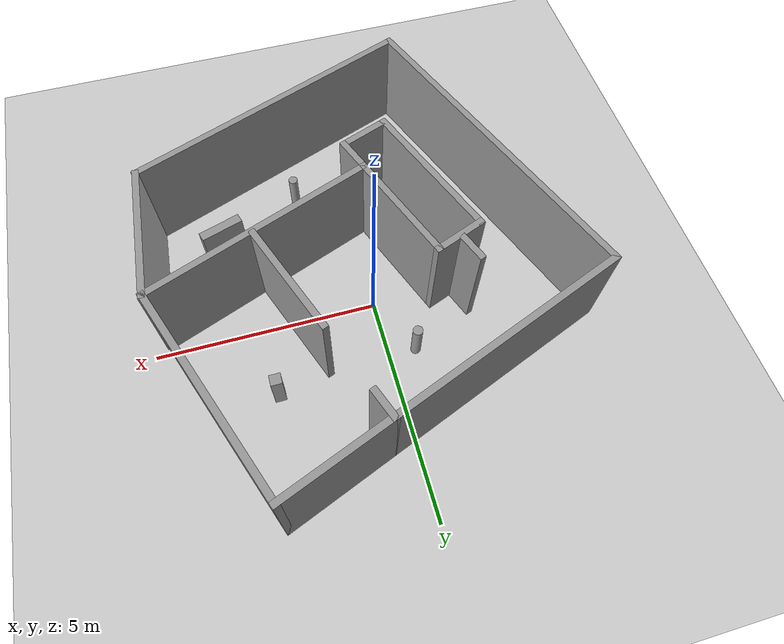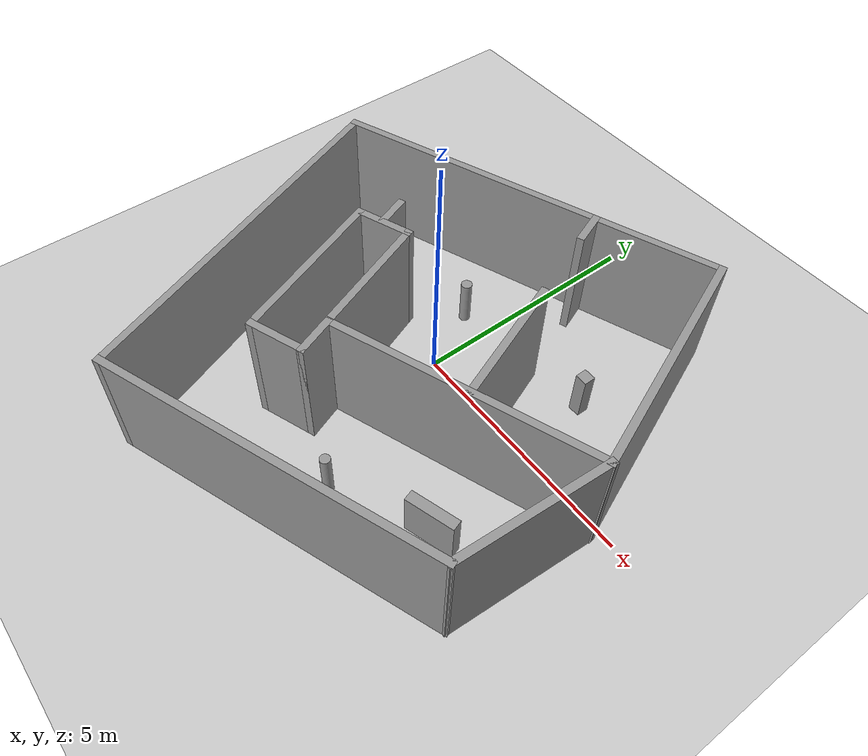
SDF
<sdf version="1.6">
 <world name="default">
  <light name="sun" type="directional">
   <pose>0 0 10 0 -0 0</pose>
   <diffuse>0.8 0.8 0.8 1</diffuse>
   <specular>0.2 0.2 0.2 1</specular>
   <attenuation>
    <range>1000</range>
    <constant>0.9</constant>
    <linear>0.01</linear>
    <quadratic>0.001</quadratic>
   </attenuation>
   <direction>-0.5 0.1 -0.9</direction>
  </light>
  <model name="ground_plane">
   <static>1</static>
   <link name="link">
    <collision name="collision">
     <geometry><plane><normal>0 0 1</normal><size>100 100</size></plane></geometry>
     <surface>
      <contact><collide_bitmask>65535</collide_bitmask></contact>
      <friction><ode><mu>100</mu><mu2>50</mu2></ode></friction>
     </surface>
    </collision>
    <visual name="visual">
     <cast_shadows>0</cast_shadows>
     <geometry><plane><normal>0 0 1</normal><size>100 100</size></plane></geometry>
     <material>
      <script><uri>file://media/materials/scripts/gazebo.material</uri><name>Gazebo/Grey</name></script>
     </material>
    </visual>
   </link>
  </model>
  <gravity>0 0 -9.8</gravity>
  <magnetic_field>6e-06 2.3e-05 -4.2e-05</magnetic_field>
  <atmosphere type="adiabatic"/>
  <physics name="default_physics" default="0" type="ode">
   <max_step_size>0.001</max_step_size>
   <real_time_factor>1</real_time_factor>
   <real_time_update_rate>1000</real_time_update_rate>
  </physics>
  <scene><ambient>0.4 0.4 0.4 1</ambient><background>0.7 0.7 0.7 1</background><shadows>1</shadows></scene>
  <spherical_coordinates>
   <surface_model>EARTH_WGS84</surface_model>
   <latitude_deg>0</latitude_deg>
   <longitude_deg>0</longitude_deg>
   <elevation>0</elevation>
   <heading_deg>0</heading_deg>
  </spherical_coordinates>
  <model name="simple_world">
   <pose>0.496822 -0.689835 0 0 -0 0.363551</pose>
   <link name="Wall_0">
    <collision name="Wall_0_Collision">
     <geometry><box><size>8.25 0.15 2.5</size></box></geometry>
     <pose>0 0 1.25 0 -0 0</pose>
    </collision>
    <visual name="Wall_0_Visual">
     <pose>0 0 1.25 0 -0 0</pose>
     <geometry><box><size>8.25 0.15 2.5</size></box></geometry>
     <material>
      <script><uri>file://media/materials/scripts/gazebo.material</uri><name>Gazebo/Grey</name></script>
      <ambient>1 1 1 1</ambient>
     </material>
     <meta><layer>0</layer></meta>
    </visual>
    <pose>-0.012156 3.81216 0 0 -0 0</pose>
   </link>
   <link name="Wall_1">
    <collision name="Wall_1_Collision">
     <geometry><box><size>5 0.15 2.5</size></box></geometry>
     <pose>0 0 1.25 0 -0 0</pose>
    </collision>
    <visual name="Wall_1_Visual">
     <pose>0 0 1.25 0 -0 0</pose>
     <geometry><box><size>5 0.15 2.5</size></box></geometry>
     <material>
      <script><uri>file://media/materials/scripts/gazebo.material</uri><name>Gazebo/Grey</name></script>
      <ambient>1 1 1 1</ambient>
     </material>
     <meta><layer>0</layer></meta>
    </visual>
    <pose>4.03784 1.38716 0 0 0 -1.5708</pose>
   </link>
   <link name="Wall_10">
    <collision name="Wall_10_Collision">
     <geometry><box><size>7 0.15 2.5</size></box></geometry>
     <pose>0 0 1.25 0 -0 0</pose>
    </collision>
    <visual name="Wall_10_Visual">
     <pose>0 0 1.25 0 -0 0</pose>
     <geometry><box><size>7 0.15 2.5</size></box></geometry>
     <material>
      <script><uri>file://media/materials/scripts/gazebo.material</uri><name>Gazebo/Grey</name></script>
      <ambient>1 1 1 1</ambient>
     </material>
     <meta><layer>0</layer></meta>
    </visual>
    <pose>-0.637156 -3.78784 0 0 -0 0</pose>
   </link>
   <link name="Wall_11">
    <collision name="Wall_11_Collision">
     <geometry><box><size>3.17076 0.15 2.5</size></box></geometry>
     <pose>0 0 1.25 0 -0 0</pose>
    </collision>
    <visual name="Wall_11_Visual">
     <pose>0 0 1.25 0 -0 0</pose>
     <geometry><box><size>3.17076 0.15 2.5</size></box></geometry>
     <material>
      <script><uri>file://media/materials/scripts/gazebo.material</uri><name>Gazebo/Grey</name></script>
      <ambient>1 1 1 1</ambient>
     </material>
     <meta><layer>0</layer></meta>
    </visual>
    <pose>3.41284 -2.41284 0 0 -0 1.14417</pose>
   </link>
   <link name="Wall_13">
    <collision name="Wall_13_Collision">
     <geometry><box><size>2.75 0.15 2.5</size></box></geometry>
     <pose>0 0 1.25 0 -0 0</pose>
    </collision>
    <visual name="Wall_13_Visual">
     <pose>0 0 1.25 0 -0 0</pose>
     <geometry><box><size>2.75 0.15 2.5</size></box></geometry>
     <material>
      <script><uri>file://media/materials/scripts/gazebo.material</uri><name>Gazebo/Grey</name></script>
      <ambient>1 1 1 1</ambient>
     </material>
     <meta><layer>0</layer></meta>
    </visual>
    <pose>1.53466 0.290982 0 0 -0 1.5708</pose>
   </link>
   <link name="Wall_15">
    <collision name="Wall_15_Collision">
     <geometry><box><size>0.75 0.15 2.5</size></box></geometry>
     <pose>0 0 1.25 0 -0 0</pose>
    </collision>
    <visual name="Wall_15_Visual">
     <pose>0 0 1.25 0 -0 0</pose>
     <geometry><box><size>0.75 0.15 2.5</size></box></geometry>
     <material>
      <script><uri>file://media/materials/scripts/gazebo.material</uri><name>Gazebo/Grey</name></script>
      <ambient>1 1 1 1</ambient>
     </material>
     <meta><layer>0</layer></meta>
    </visual>
    <pose>1.51946 3.51216 0 0 0 -1.5708</pose>
   </link>
   <link name="Wall_17">
    <collision name="Wall_17_Collision">
     <geometry><box><size>0.75 0.15 2.5</size></box></geometry>
     <pose>0 0 1.25 0 -0 0</pose>
    </collision>
    <visual name="Wall_17_Visual">
     <pose>0 0 1.25 0 -0 0</pose>
     <geometry><box><size>0.75 0.15 2.5</size></box></geometry>
     <material>
      <script><uri>file://media/materials/scripts/gazebo.material</uri><name>Gazebo/Grey</name></script>
      <ambient>1 1 1 1</ambient>
     </material>
     <meta><layer>0</layer></meta>
    </visual>
    <pose>-1.88731 1.89168 0 0 -0 1.5708</pose>
   </link>
   <link name="Wall_2">
    <collision name="Wall_2_Collision">
     <geometry><box><size>5.5 0.15 2.5</size></box></geometry>
     <pose>0 0 1.25 0 -0 0</pose>
    </collision>
    <visual name="Wall_2_Visual">
     <pose>0 0 1.25 0 -0 0</pose>
     <geometry><box><size>5.5 0.15 2.5</size></box></geometry>
     <material>
      <script><uri>file://media/materials/scripts/gazebo.material</uri><name>Gazebo/Grey</name></script>
      <ambient>1 1 1 1</ambient>
     </material>
     <meta><layer>0</layer></meta>
    </visual>
    <pose>1.36284 -1.03784 0 0 -0 3.14159</pose>
   </link>
   <link name="Wall_3">
    <collision name="Wall_3_Collision">
     <geometry><box><size>2.75 0.15 2.5</size></box></geometry>
     <pose>0 0 1.25 0 -0 0</pose>
    </collision>
    <visual name="Wall_3_Visual">
     <pose>0 0 1.25 0 -0 0</pose>
     <geometry><box><size>2.75 0.15 2.5</size></box></geometry>
     <material>
      <script><uri>file://media/materials/scripts/gazebo.material</uri><name>Gazebo/Grey</name></script>
      <ambient>1 1 1 1</ambient>
     </material>
     <meta><layer>0</layer></meta>
    </visual>
    <pose>-1.31216 0.262156 0 0 -0 1.5708</pose>
   </link>
   <link name="Wall_4">
    <collision name="Wall_4_Collision">
     <geometry><box><size>1.25 0.15 2.5</size></box></geometry>
     <pose>0 0 1.25 0 -0 0</pose>
    </collision>
    <visual name="Wall_4_Visual">
     <pose>0 0 1.25 0 -0 0</pose>
     <geometry><box><size>1.25 0.15 2.5</size></box></geometry>
     <material>
      <script><uri>file://media/materials/scripts/gazebo.material</uri><name>Gazebo/Grey</name></script>
      <ambient>1 1 1 1</ambient>
     </material>
     <meta><layer>0</layer></meta>
    </visual>
    <pose>-1.86216 1.56216 0 0 -0 3.14159</pose>
   </link>
   <link name="Wall_5">
    <collision name="Wall_5_Collision">
     <geometry><box><size>3.5 0.15 2.5</size></box></geometry>
     <pose>0 0 1.25 0 -0 0</pose>
    </collision>
    <visual name="Wall_5_Visual">
     <pose>0 0 1.25 0 -0 0</pose>
     <geometry><box><size>3.5 0.15 2.5</size></box></geometry>
     <material>
      <script><uri>file://media/materials/scripts/gazebo.material</uri><name>Gazebo/Grey</name></script>
      <ambient>1 1 1 1</ambient>
     </material>
     <meta><layer>0</layer></meta>
    </visual>
    <pose>-2.41216 -0.112844 0 0 0 -1.5708</pose>
   </link>
   <link name="Wall_6">
    <collision name="Wall_6_Collision">
     <geometry><box><size>1.25 0.15 2.5</size></box></geometry>
     <pose>0 0 1.25 0 -0 0</pose>
    </collision>
    <visual name="Wall_6_Visual">
     <pose>0 0 1.25 0 -0 0</pose>
     <geometry><box><size>1.25 0.15 2.5</size></box></geometry>
     <material>
      <script><uri>file://media/materials/scripts/gazebo.material</uri><name>Gazebo/Grey</name></script>
      <ambient>1 1 1 1</ambient>
     </material>
     <meta><layer>0</layer></meta>
    </visual>
    <pose>-1.86216 -1.78784 0 0 -0 0</pose>
   </link>
   <link name="Wall_7">
    <collision name="Wall_7_Collision">
     <geometry><box><size>0.9 0.15 2.5</size></box></geometry>
     <pose>0 0 1.25 0 -0 0</pose>
    </collision>
    <visual name="Wall_7_Visual">
     <pose>0 0 1.25 0 -0 0</pose>
     <geometry><box><size>0.9 0.15 2.5</size></box></geometry>
     <material>
      <script><uri>file://media/materials/scripts/gazebo.material</uri><name>Gazebo/Grey</name></script>
      <ambient>1 1 1 1</ambient>
     </material>
     <meta><layer>0</layer></meta>
    </visual>
    <pose>-1.31216 -1.41284 0 0 -0 1.5708</pose>
   </link>
   <link name="Wall_9">
    <collision name="Wall_9_Collision">
     <geometry><box><size>7.75 0.15 2.5</size></box></geometry>
     <pose>0 0 1.25 0 -0 0</pose>
    </collision>
    <visual name="Wall_9_Visual">
     <pose>0 0 1.25 0 -0 0</pose>
     <geometry><box><size>7.75 0.15 2.5</size></box></geometry>
     <material>
      <script><uri>file://media/materials/scripts/gazebo.material</uri><name>Gazebo/Grey</name></script>
      <ambient>1 1 1 1</ambient>
     </material>
     <meta><layer>0</layer></meta>
    </visual>
    <pose>-4.06216 0.012156 0 0 0 -1.5708</pose>
   </link>
   <static>1</static>
  </model>
  <model name="unit_box">
   <pose>2.51882 1.56607 0.5 -3e-06 -1e-06 -9e-06</pose>
   <link name="link">
    <inertial>
     <mass>1</mass>
     <inertia>
      <ixx>0.166667</ixx>
      <ixy>0</ixy>
      <ixz>0</ixz>
      <iyy>0.166667</iyy>
      <iyz>0</iyz>
      <izz>0.166667</izz>
     </inertia>
    </inertial>
    <collision name="collision"><geometry><box><size>0.247712 0.239196 1</size></box></geometry></collision>
    <visual name="visual">
     <geometry><box><size>0.247712 0.239196 1</size></box></geometry>
     <material>
      <script><name>Gazebo/Grey</name><uri>file://media/materials/scripts/gazebo.material</uri></script>
     </material>
    </visual>
   </link>
  </model>
  <model name="unit_cylinder">
   <pose>-0.621357 1.29087 0.499999 0 0 -1.1e-05</pose>
   <link name="link">
    <inertial>
     <mass>1</mass>
     <inertia><ixx>0.145833</ixx><ixy>0</ixy><ixz>0</ixz><iyy>0.145833</iyy><iyz>0</iyz><izz>0.125</izz></inertia>
    </inertial>
    <collision name="collision">
     <geometry><cylinder><radius>0.110936</radius><length>1</length></cylinder></geometry>
    </collision>
    <visual name="visual">
     <geometry><cylinder><radius>0.110936</radius><length>1</length></cylinder></geometry>
     <material>
      <script><name>Gazebo/Grey</name><uri>file://media/materials/scripts/gazebo.material</uri></script>
     </material>
    </visual>
   </link>
  </model>
  <model name="unit_box_0">
   <pose>3.00234 -2.40313 0.5 0 -0 0.309867</pose>
   <link name="link">
    <inertial>
     <mass>1</mass>
     <inertia>
      <ixx>0.166667</ixx>
      <ixy>0</ixy>
      <ixz>0</ixz>
      <iyy>0.166667</iyy>
      <iyz>0</iyz>
      <izz>0.166667</izz>
     </inertia>
    </inertial>
    <collision name="collision"><geometry><box><size>1 0.218371 1</size></box></geometry></collision>
    <visual name="visual">
     <geometry><box><size>1 0.218371 1</size></box></geometry>
     <material>
      <script><name>Gazebo/Grey</name><uri>file://media/materials/scripts/gazebo.material</uri></script>
     </material>
    </visual>
   </link>
  </model>
  <model name="unit_cylinder_0">
   <pose>1.10413 -3.28351 0.499997 0 0 -2e-06</pose>
   <link name="link">
    <inertial>
     <mass>1</mass>
     <inertia><ixx>0.145833</ixx><ixy>0</ixy><ixz>0</ixz><iyy>0.145833</iyy><iyz>0</iyz><izz>0.125</izz></inertia>
    </inertial>
    <collision name="collision">
     <geometry><cylinder><radius>0.103837</radius><length>1</length></cylinder></geometry>
    </collision>
    <visual name="visual">
     <geometry><cylinder><radius>0.103837</radius><length>1</length></cylinder></geometry>
     <material>
      <script><name>Gazebo/Grey</name><uri>file://media/materials/scripts/gazebo.material</uri></script>
     </material>
    </visual>
   </link>
  </model>
 </world>
</sdf>
